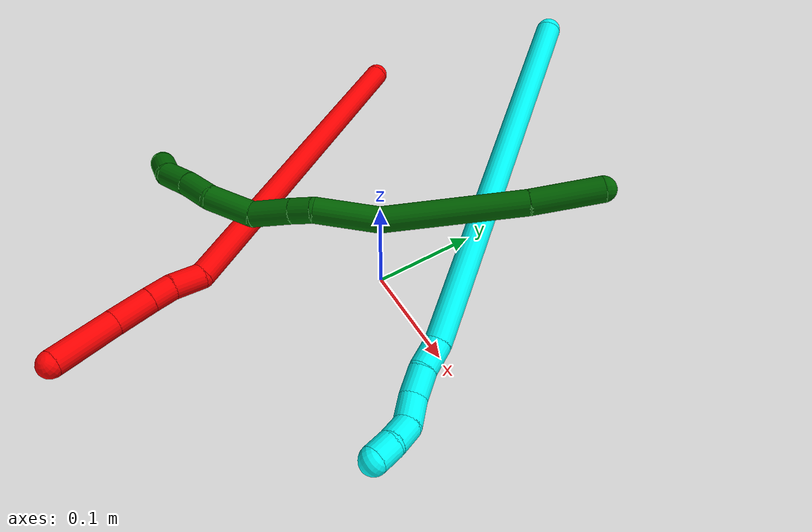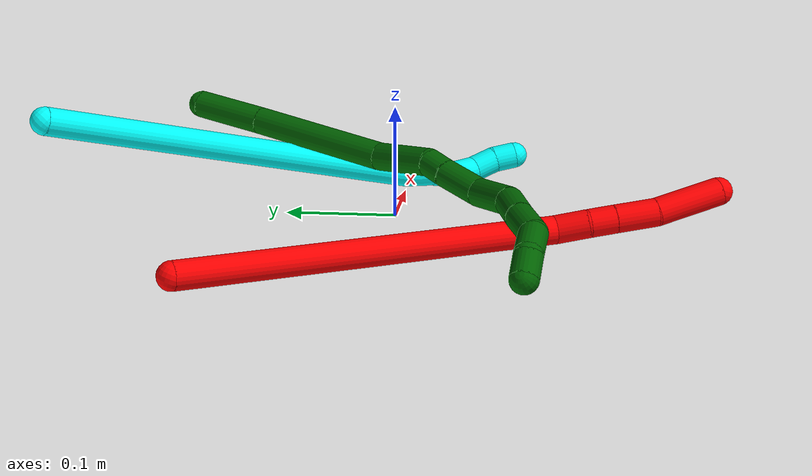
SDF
<sdf version="1.7">
 <world name="default">
  <model name="bin">
   <static>1</static>
   <link name="bottom">
    <collision name="collision-bottom">
     <pose>0 0 -0.01 0 -0 0</pose>
     <geometry><box><size>0.8 0.6 0.02</size></box></geometry>
     <surface>
      <friction><ode><mu>100</mu><mu2>100</mu2></ode></friction>
      <contact><collide_bitmask>65535</collide_bitmask></contact>
     </surface>
    </collision>
   </link>
   <link name="west_wall">
    <collision name="collision-west_wall">
     <pose>-0.41 0 0.1 0 -0 0</pose>
     <geometry><box><size>0.02 0.6 0.2</size></box></geometry>
     <surface>
      <friction><ode><mu>100</mu><mu2>100</mu2></ode></friction>
      <contact><collide_bitmask>65535</collide_bitmask></contact>
     </surface>
    </collision>
   </link>
   <link name="east_wall">
    <collision name="collision-east_wall">
     <pose>0.41 0 0.1 0 -0 0</pose>
     <geometry><box><size>0.02 0.6 0.2</size></box></geometry>
     <surface>
      <friction><ode><mu>100</mu><mu2>100</mu2></ode></friction>
      <contact><collide_bitmask>65535</collide_bitmask></contact>
     </surface>
    </collision>
   </link>
   <link name="south_wall">
    <collision name="collision-south_wall">
     <pose>0 -0.31 0.1 0 -0 0</pose>
     <geometry><box><size>0.8 0.02 0.2</size></box></geometry>
     <surface>
      <friction><ode><mu>100</mu><mu2>100</mu2></ode></friction>
      <contact><collide_bitmask>65535</collide_bitmask></contact>
     </surface>
    </collision>
   </link>
   <link name="north_wall">
    <collision name="collision-north_wall">
     <pose>0 0.31 0.1 0 -0 0</pose>
     <geometry><box><size>0.8 0.02 0.2</size></box></geometry>
     <surface>
      <friction><ode><mu>100</mu><mu2>100</mu2></ode></friction>
      <contact><collide_bitmask>65535</collide_bitmask></contact>
     </surface>
    </collision>
   </link>
  </model>
  <model name="2">
   <static>0</static>
   <link name="2">
    <collision name="collision-cylinder-e_1_1_4">
     <pose>0.079349 -0.143141 -0.059236 1.96317 0.473373 0.692643</pose>
     <geometry><cylinder><radius>0.0125</radius><length>0.348106</length></cylinder></geometry>
     <surface>
      <friction><ode><mu>1.16</mu><mu2>1.16</mu2><slip1>0</slip1><slip2>0</slip2></ode></friction>
      <contact><ode><kp>1e+06</kp><kd>1</kd><max_vel>0</max_vel><min_depth>0.001</min_depth></ode></contact>
     </surface>
    </collision>
    <visual name="visual-cylinder-e_1_1_4">
     <pose>0.079349 -0.143141 -0.059236 1.96317 0.473373 0.692643</pose>
     <geometry><cylinder><radius>0.0125</radius><length>0.348106</length></cylinder></geometry>
     <material><ambient>1 0 0 1</ambient></material>
    </visual>
    <collision name="collision-cylinder-e_2_4_5">
     <pose>0.169554 -0.293169 -0.126534 2.43457 0.797166 1.7025</pose>
     <geometry><cylinder><radius>0.0125</radius><length>0.03035</length></cylinder></geometry>
     <surface>
      <friction><ode><mu>1.16</mu><mu2>1.16</mu2><slip1>0</slip1><slip2>0</slip2></ode></friction>
      <contact><ode><kp>1e+06</kp><kd>1</kd><max_vel>0</max_vel><min_depth>0.001</min_depth></ode></contact>
     </surface>
    </collision>
    <visual name="visual-cylinder-e_2_4_5">
     <pose>0.169554 -0.293169 -0.126534 2.43457 0.797166 1.7025</pose>
     <geometry><cylinder><radius>0.0125</radius><length>0.03035</length></cylinder></geometry>
     <material><ambient>1 0 0 1</ambient></material>
    </visual>
    <collision name="collision-cylinder-e_3_5_6">
     <pose>0.187676 -0.307168 -0.140119 2.2312 0.678892 1.2499</pose>
     <geometry><cylinder><radius>0.0125</radius><length>0.023142</length></cylinder></geometry>
     <surface>
      <friction><ode><mu>1.16</mu><mu2>1.16</mu2><slip1>0</slip1><slip2>0</slip2></ode></friction>
      <contact><ode><kp>1e+06</kp><kd>1</kd><max_vel>0</max_vel><min_depth>0.001</min_depth></ode></contact>
     </surface>
    </collision>
    <visual name="visual-cylinder-e_3_5_6">
     <pose>0.187676 -0.307168 -0.140119 2.2312 0.678892 1.2499</pose>
     <geometry><cylinder><radius>0.0125</radius><length>0.023142</length></cylinder></geometry>
     <material><ambient>1 0 0 1</ambient></material>
    </visual>
    <collision name="collision-cylinder-e_4_6_7">
     <pose>0.206418 -0.32613 -0.154321 2.20284 0.663281 1.19293</pose>
     <geometry><cylinder><radius>0.0125</radius><length>0.037278</length></cylinder></geometry>
     <surface>
      <friction><ode><mu>1.16</mu><mu2>1.16</mu2><slip1>0</slip1><slip2>0</slip2></ode></friction>
      <contact><ode><kp>1e+06</kp><kd>1</kd><max_vel>0</max_vel><min_depth>0.001</min_depth></ode></contact>
     </surface>
    </collision>
    <visual name="visual-cylinder-e_4_6_7">
     <pose>0.206418 -0.32613 -0.154321 2.20284 0.663281 1.19293</pose>
     <geometry><cylinder><radius>0.0125</radius><length>0.037278</length></cylinder></geometry>
     <material><ambient>1 0 0 1</ambient></material>
    </visual>
    <collision name="collision-cylinder-e_5_7_2">
     <pose>0.232594 -0.358515 -0.180211 2.26843 0.50179 1.00456</pose>
     <geometry><cylinder><radius>0.0125</radius><length>0.061124</length></cylinder></geometry>
     <surface>
      <friction><ode><mu>1.16</mu><mu2>1.16</mu2><slip1>0</slip1><slip2>0</slip2></ode></friction>
      <contact><ode><kp>1e+06</kp><kd>1</kd><max_vel>0</max_vel><min_depth>0.001</min_depth></ode></contact>
     </surface>
    </collision>
    <visual name="visual-cylinder-e_5_7_2">
     <pose>0.232594 -0.358515 -0.180211 2.26843 0.50179 1.00456</pose>
     <geometry><cylinder><radius>0.0125</radius><length>0.061124</length></cylinder></geometry>
     <material><ambient>1 0 0 1</ambient></material>
    </visual>
    <collision name="collision-sphere-2">
     <pose>0.247294 -0.379049 -0.197423 0 -0 0</pose>
     <geometry><sphere><radius>0.0125</radius></sphere></geometry>
     <surface>
      <friction><ode><mu>1.16</mu><mu2>1.16</mu2><slip1>0</slip1><slip2>0</slip2></ode></friction>
      <contact><ode><kp>1e+06</kp><kd>1</kd><max_vel>0</max_vel><min_depth>0.001</min_depth></ode></contact>
     </surface>
    </collision>
    <visual name="visual-sphere-2">
     <pose>0.247294 -0.379049 -0.197423 0 -0 0</pose>
     <geometry><sphere><radius>0.0125</radius></sphere></geometry>
     <material><ambient>1 0 0 1</ambient></material>
    </visual>
    <collision name="collision-sphere-7">
     <pose>0.217894 -0.33798 -0.162998 0 -0 0</pose>
     <geometry><sphere><radius>0.0125</radius></sphere></geometry>
     <surface>
      <friction><ode><mu>1.16</mu><mu2>1.16</mu2><slip1>0</slip1><slip2>0</slip2></ode></friction>
      <contact><ode><kp>1e+06</kp><kd>1</kd><max_vel>0</max_vel><min_depth>0.001</min_depth></ode></contact>
     </surface>
    </collision>
    <visual name="visual-sphere-7">
     <pose>0.217894 -0.33798 -0.162998 0 -0 0</pose>
     <geometry><sphere><radius>0.0125</radius></sphere></geometry>
     <material><ambient>1 0 0 1</ambient></material>
    </visual>
    <collision name="collision-sphere-6">
     <pose>0.194942 -0.31428 -0.145644 0 -0 0</pose>
     <geometry><sphere><radius>0.0125</radius></sphere></geometry>
     <surface>
      <friction><ode><mu>1.16</mu><mu2>1.16</mu2><slip1>0</slip1><slip2>0</slip2></ode></friction>
      <contact><ode><kp>1e+06</kp><kd>1</kd><max_vel>0</max_vel><min_depth>0.001</min_depth></ode></contact>
     </surface>
    </collision>
    <visual name="visual-sphere-6">
     <pose>0.194942 -0.31428 -0.145644 0 -0 0</pose>
     <geometry><sphere><radius>0.0125</radius></sphere></geometry>
     <material><ambient>1 0 0 1</ambient></material>
    </visual>
    <collision name="collision-sphere-5">
     <pose>0.18041 -0.300057 -0.134595 0 -0 0</pose>
     <geometry><sphere><radius>0.0125</radius></sphere></geometry>
     <surface>
      <friction><ode><mu>1.16</mu><mu2>1.16</mu2><slip1>0</slip1><slip2>0</slip2></ode></friction>
      <contact><ode><kp>1e+06</kp><kd>1</kd><max_vel>0</max_vel><min_depth>0.001</min_depth></ode></contact>
     </surface>
    </collision>
    <visual name="visual-sphere-5">
     <pose>0.18041 -0.300057 -0.134595 0 -0 0</pose>
     <geometry><sphere><radius>0.0125</radius></sphere></geometry>
     <material><ambient>1 0 0 1</ambient></material>
    </visual>
    <collision name="collision-sphere-1">
     <geometry><sphere><radius>0.0125</radius></sphere></geometry>
     <surface>
      <friction><ode><mu>1.16</mu><mu2>1.16</mu2><slip1>0</slip1><slip2>0</slip2></ode></friction>
      <contact><ode><kp>1e+06</kp><kd>1</kd><max_vel>0</max_vel><min_depth>0.001</min_depth></ode></contact>
     </surface>
    </collision>
    <visual name="visual-sphere-1">
     <geometry><sphere><radius>0.0125</radius></sphere></geometry>
     <material><ambient>1 0 0 1</ambient></material>
    </visual>
    <collision name="collision-sphere-4">
     <pose>0.158699 -0.286281 -0.118472 0 -0 0</pose>
     <geometry><sphere><radius>0.0125</radius></sphere></geometry>
     <surface>
      <friction><ode><mu>1.16</mu><mu2>1.16</mu2><slip1>0</slip1><slip2>0</slip2></ode></friction>
      <contact><ode><kp>1e+06</kp><kd>1</kd><max_vel>0</max_vel><min_depth>0.001</min_depth></ode></contact>
     </surface>
    </collision>
    <visual name="visual-sphere-4">
     <pose>0.158699 -0.286281 -0.118472 0 -0 0</pose>
     <geometry><sphere><radius>0.0125</radius></sphere></geometry>
     <material><ambient>1 0 0 1</ambient></material>
    </visual>
    <inertial>
     <pose>0.118046 -0.199811 -0.088943 0 -0 0</pose>
     <mass>0.5</mass>
     <inertia>
      <ixx>0.004478</ixx>
      <ixy>0</ixy>
      <ixz>0</ixz>
      <iyy>0.001914</iyy>
      <iyz>0</iyz>
      <izz>0.001281</izz>
     </inertia>
    </inertial>
   </link>
   <pose>-0.264957 0.150574 0.011499 2.89554 0.277325 -2.10203</pose>
  </model>
  <model name="3">
   <static>0</static>
   <link name="3">
    <collision name="collision-cylinder-e_1_1_4">
     <pose>0.086215 -0.115543 -0.120668 2.37789 0.47641 1.0877</pose>
     <geometry><cylinder><radius>0.0125</radius><length>0.375999</length></cylinder></geometry>
     <surface>
      <friction><ode><mu>1.16</mu><mu2>1.16</mu2><slip1>0</slip1><slip2>0</slip2></ode></friction>
      <contact><ode><kp>1e+06</kp><kd>1</kd><max_vel>0</max_vel><min_depth>0.001</min_depth></ode></contact>
     </surface>
    </collision>
    <visual name="visual-cylinder-e_1_1_4">
     <pose>0.086215 -0.115543 -0.120668 2.37789 0.47641 1.0877</pose>
     <geometry><cylinder><radius>0.0125</radius><length>0.375999</length></cylinder></geometry>
     <material><ambient>0.003922 1 0.996078 1</ambient></material>
    </visual>
    <collision name="collision-cylinder-e_2_4_5">
     <pose>0.176208 -0.241464 -0.24983 2.25671 0.274583 0.567503</pose>
     <geometry><cylinder><radius>0.0125</radius><length>0.027868</length></cylinder></geometry>
     <surface>
      <friction><ode><mu>1.16</mu><mu2>1.16</mu2><slip1>0</slip1><slip2>0</slip2></ode></friction>
      <contact><ode><kp>1e+06</kp><kd>1</kd><max_vel>0</max_vel><min_depth>0.001</min_depth></ode></contact>
     </surface>
    </collision>
    <visual name="visual-cylinder-e_2_4_5">
     <pose>0.176208 -0.241464 -0.24983 2.25671 0.274583 0.567503</pose>
     <geometry><cylinder><radius>0.0125</radius><length>0.027868</length></cylinder></geometry>
     <material><ambient>0.003922 1 0.996078 1</ambient></material>
    </visual>
    <collision name="collision-cylinder-e_3_5_6">
     <pose>0.185914 -0.260113 -0.266241 2.33431 0.477775 1.03647</pose>
     <geometry><cylinder><radius>0.0125</radius><length>0.025785</length></cylinder></geometry>
     <surface>
      <friction><ode><mu>1.16</mu><mu2>1.16</mu2><slip1>0</slip1><slip2>0</slip2></ode></friction>
      <contact><ode><kp>1e+06</kp><kd>1</kd><max_vel>0</max_vel><min_depth>0.001</min_depth></ode></contact>
     </surface>
    </collision>
    <visual name="visual-cylinder-e_3_5_6">
     <pose>0.185914 -0.260113 -0.266241 2.33431 0.477775 1.03647</pose>
     <geometry><cylinder><radius>0.0125</radius><length>0.025785</length></cylinder></geometry>
     <material><ambient>0.003922 1 0.996078 1</ambient></material>
    </visual>
    <collision name="collision-cylinder-e_4_6_7">
     <pose>0.198004 -0.278644 -0.278945 2.0074 0.498406 0.760313</pose>
     <geometry><cylinder><radius>0.0125</radius><length>0.02578</length></cylinder></geometry>
     <surface>
      <friction><ode><mu>1.16</mu><mu2>1.16</mu2><slip1>0</slip1><slip2>0</slip2></ode></friction>
      <contact><ode><kp>1e+06</kp><kd>1</kd><max_vel>0</max_vel><min_depth>0.001</min_depth></ode></contact>
     </surface>
    </collision>
    <visual name="visual-cylinder-e_4_6_7">
     <pose>0.198004 -0.278644 -0.278945 2.0074 0.498406 0.760313</pose>
     <geometry><cylinder><radius>0.0125</radius><length>0.02578</length></cylinder></geometry>
     <material><ambient>0.003922 1 0.996078 1</ambient></material>
    </visual>
    <collision name="collision-cylinder-e_5_7_8">
     <pose>0.204475 -0.300374 -0.287803 1.91178 0.025393 0.035952</pose>
     <geometry><cylinder><radius>0.0125</radius><length>0.02435</length></cylinder></geometry>
     <surface>
      <friction><ode><mu>1.16</mu><mu2>1.16</mu2><slip1>0</slip1><slip2>0</slip2></ode></friction>
      <contact><ode><kp>1e+06</kp><kd>1</kd><max_vel>0</max_vel><min_depth>0.001</min_depth></ode></contact>
     </surface>
    </collision>
    <visual name="visual-cylinder-e_5_7_8">
     <pose>0.204475 -0.300374 -0.287803 1.91178 0.025393 0.035952</pose>
     <geometry><cylinder><radius>0.0125</radius><length>0.02435</length></cylinder></geometry>
     <material><ambient>0.003922 1 0.996078 1</ambient></material>
    </visual>
    <collision name="collision-cylinder-e_6_8_2">
     <pose>0.204391 -0.320359 -0.297309 2.13901 -0.038834 -0.070847</pose>
     <geometry><cylinder><radius>0.0125</radius><length>0.020218</length></cylinder></geometry>
     <surface>
      <friction><ode><mu>1.16</mu><mu2>1.16</mu2><slip1>0</slip1><slip2>0</slip2></ode></friction>
      <contact><ode><kp>1e+06</kp><kd>1</kd><max_vel>0</max_vel><min_depth>0.001</min_depth></ode></contact>
     </surface>
    </collision>
    <visual name="visual-cylinder-e_6_8_2">
     <pose>0.204391 -0.320359 -0.297309 2.13901 -0.038834 -0.070847</pose>
     <geometry><cylinder><radius>0.0125</radius><length>0.020218</length></cylinder></geometry>
     <material><ambient>0.003922 1 0.996078 1</ambient></material>
    </visual>
    <collision name="collision-sphere-2">
     <pose>0.203999 -0.328873 -0.302745 0 -0 0</pose>
     <geometry><sphere><radius>0.0125</radius></sphere></geometry>
     <surface>
      <friction><ode><mu>1.16</mu><mu2>1.16</mu2><slip1>0</slip1><slip2>0</slip2></ode></friction>
      <contact><ode><kp>1e+06</kp><kd>1</kd><max_vel>0</max_vel><min_depth>0.001</min_depth></ode></contact>
     </surface>
    </collision>
    <visual name="visual-sphere-2">
     <pose>0.203999 -0.328873 -0.302745 0 -0 0</pose>
     <geometry><sphere><radius>0.0125</radius></sphere></geometry>
     <material><ambient>0.003922 1 0.996078 1</ambient></material>
    </visual>
    <collision name="collision-sphere-4">
     <pose>0.17243 -0.231085 -0.241335 0 -0 0</pose>
     <geometry><sphere><radius>0.0125</radius></sphere></geometry>
     <surface>
      <friction><ode><mu>1.16</mu><mu2>1.16</mu2><slip1>0</slip1><slip2>0</slip2></ode></friction>
      <contact><ode><kp>1e+06</kp><kd>1</kd><max_vel>0</max_vel><min_depth>0.001</min_depth></ode></contact>
     </surface>
    </collision>
    <visual name="visual-sphere-4">
     <pose>0.17243 -0.231085 -0.241335 0 -0 0</pose>
     <geometry><sphere><radius>0.0125</radius></sphere></geometry>
     <material><ambient>0.003922 1 0.996078 1</ambient></material>
    </visual>
    <collision name="collision-sphere-1">
     <geometry><sphere><radius>0.0125</radius></sphere></geometry>
     <surface>
      <friction><ode><mu>1.16</mu><mu2>1.16</mu2><slip1>0</slip1><slip2>0</slip2></ode></friction>
      <contact><ode><kp>1e+06</kp><kd>1</kd><max_vel>0</max_vel><min_depth>0.001</min_depth></ode></contact>
     </surface>
    </collision>
    <visual name="visual-sphere-1">
     <geometry><sphere><radius>0.0125</radius></sphere></geometry>
     <material><ambient>0.003922 1 0.996078 1</ambient></material>
    </visual>
    <collision name="collision-sphere-8">
     <pose>0.204784 -0.311844 -0.291873 0 -0 0</pose>
     <geometry><sphere><radius>0.0125</radius></sphere></geometry>
     <surface>
      <friction><ode><mu>1.16</mu><mu2>1.16</mu2><slip1>0</slip1><slip2>0</slip2></ode></friction>
      <contact><ode><kp>1e+06</kp><kd>1</kd><max_vel>0</max_vel><min_depth>0.001</min_depth></ode></contact>
     </surface>
    </collision>
    <visual name="visual-sphere-8">
     <pose>0.204784 -0.311844 -0.291873 0 -0 0</pose>
     <geometry><sphere><radius>0.0125</radius></sphere></geometry>
     <material><ambient>0.003922 1 0.996078 1</ambient></material>
    </visual>
    <collision name="collision-sphere-5">
     <pose>0.179986 -0.251842 -0.258325 0 -0 0</pose>
     <geometry><sphere><radius>0.0125</radius></sphere></geometry>
     <surface>
      <friction><ode><mu>1.16</mu><mu2>1.16</mu2><slip1>0</slip1><slip2>0</slip2></ode></friction>
      <contact><ode><kp>1e+06</kp><kd>1</kd><max_vel>0</max_vel><min_depth>0.001</min_depth></ode></contact>
     </surface>
    </collision>
    <visual name="visual-sphere-5">
     <pose>0.179986 -0.251842 -0.258325 0 -0 0</pose>
     <geometry><sphere><radius>0.0125</radius></sphere></geometry>
     <material><ambient>0.003922 1 0.996078 1</ambient></material>
    </visual>
    <collision name="collision-sphere-6">
     <pose>0.191842 -0.268384 -0.274158 0 -0 0</pose>
     <geometry><sphere><radius>0.0125</radius></sphere></geometry>
     <surface>
      <friction><ode><mu>1.16</mu><mu2>1.16</mu2><slip1>0</slip1><slip2>0</slip2></ode></friction>
      <contact><ode><kp>1e+06</kp><kd>1</kd><max_vel>0</max_vel><min_depth>0.001</min_depth></ode></contact>
     </surface>
    </collision>
    <visual name="visual-sphere-6">
     <pose>0.191842 -0.268384 -0.274158 0 -0 0</pose>
     <geometry><sphere><radius>0.0125</radius></sphere></geometry>
     <material><ambient>0.003922 1 0.996078 1</ambient></material>
    </visual>
    <collision name="collision-sphere-7">
     <pose>0.204166 -0.288903 -0.283733 0 -0 0</pose>
     <geometry><sphere><radius>0.0125</radius></sphere></geometry>
     <surface>
      <friction><ode><mu>1.16</mu><mu2>1.16</mu2><slip1>0</slip1><slip2>0</slip2></ode></friction>
      <contact><ode><kp>1e+06</kp><kd>1</kd><max_vel>0</max_vel><min_depth>0.001</min_depth></ode></contact>
     </surface>
    </collision>
    <visual name="visual-sphere-7">
     <pose>0.204166 -0.288903 -0.283733 0 -0 0</pose>
     <geometry><sphere><radius>0.0125</radius></sphere></geometry>
     <material><ambient>0.003922 1 0.996078 1</ambient></material>
    </visual>
    <inertial>
     <pose>0.112674 -0.155709 -0.158817 0 -0 0</pose>
     <mass>0.5</mass>
     <inertia>
      <ixx>0.005362</ixx>
      <ixy>0</ixy>
      <ixz>0</ixz>
      <iyy>0.003231</iyy>
      <iyz>0</iyz>
      <izz>0.000676</izz>
     </inertia>
    </inertial>
   </link>
   <pose>-0.127506 0.288526 0.106566 -0.752129 0.428802 0.238872</pose>
  </model>
  <model name="6">
   <static>0</static>
   <link name="6">
    <collision name="collision-cylinder-e_1_1_4">
     <pose>-0.024775 -0.023483 -0.000177 1.57834 -0.812158 -0.817644</pose>
     <geometry><cylinder><radius>0.0125</radius><length>0.068273</length></cylinder></geometry>
     <surface>
      <friction><ode><mu>1.16</mu><mu2>1.16</mu2><slip1>0</slip1><slip2>0</slip2></ode></friction>
      <contact><ode><kp>1e+06</kp><kd>1</kd><max_vel>0</max_vel><min_depth>0.001</min_depth></ode></contact>
     </surface>
    </collision>
    <visual name="visual-cylinder-e_1_1_4">
     <pose>-0.024775 -0.023483 -0.000177 1.57834 -0.812158 -0.817644</pose>
     <geometry><cylinder><radius>0.0125</radius><length>0.068273</length></cylinder></geometry>
     <material><ambient>0 0.392157 0.003922 1</ambient></material>
    </visual>
    <collision name="collision-cylinder-e_2_4_5">
     <pose>-0.09769 -0.095615 -0.005361 1.67336 -0.777497 -0.852209</pose>
     <geometry><cylinder><radius>0.0125</radius><length>0.137247</length></cylinder></geometry>
     <surface>
      <friction><ode><mu>1.16</mu><mu2>1.16</mu2><slip1>0</slip1><slip2>0</slip2></ode></friction>
      <contact><ode><kp>1e+06</kp><kd>1</kd><max_vel>0</max_vel><min_depth>0.001</min_depth></ode></contact>
     </surface>
    </collision>
    <visual name="visual-cylinder-e_2_4_5">
     <pose>-0.09769 -0.095615 -0.005361 1.67336 -0.777497 -0.852209</pose>
     <geometry><cylinder><radius>0.0125</radius><length>0.137247</length></cylinder></geometry>
     <material><ambient>0 0.392157 0.003922 1</ambient></material>
    </visual>
    <collision name="collision-cylinder-e_3_5_6">
     <pose>-0.167548 -0.163615 -0.020345 2.04679 -0.78419 -1.19216</pose>
     <geometry><cylinder><radius>0.0125</radius><length>0.061505</length></cylinder></geometry>
     <surface>
      <friction><ode><mu>1.16</mu><mu2>1.16</mu2><slip1>0</slip1><slip2>0</slip2></ode></friction>
      <contact><ode><kp>1e+06</kp><kd>1</kd><max_vel>0</max_vel><min_depth>0.001</min_depth></ode></contact>
     </surface>
    </collision>
    <visual name="visual-cylinder-e_3_5_6">
     <pose>-0.167548 -0.163615 -0.020345 2.04679 -0.78419 -1.19216</pose>
     <geometry><cylinder><radius>0.0125</radius><length>0.061505</length></cylinder></geometry>
     <material><ambient>0 0.392157 0.003922 1</ambient></material>
    </visual>
    <collision name="collision-cylinder-e_4_6_7">
     <pose>-0.194728 -0.192615 -0.032371 1.78014 -0.50564 -0.617597</pose>
     <geometry><cylinder><radius>0.0125</radius><length>0.02255</length></cylinder></geometry>
     <surface>
      <friction><ode><mu>1.16</mu><mu2>1.16</mu2><slip1>0</slip1><slip2>0</slip2></ode></friction>
      <contact><ode><kp>1e+06</kp><kd>1</kd><max_vel>0</max_vel><min_depth>0.001</min_depth></ode></contact>
     </surface>
    </collision>
    <visual name="visual-cylinder-e_4_6_7">
     <pose>-0.194728 -0.192615 -0.032371 1.78014 -0.50564 -0.617597</pose>
     <geometry><cylinder><radius>0.0125</radius><length>0.02255</length></cylinder></geometry>
     <material><ambient>0 0.392157 0.003922 1</ambient></material>
    </visual>
    <collision name="collision-cylinder-e_5_7_8">
     <pose>-0.211029 -0.219229 -0.037209 1.7337 -0.562519 -0.65598</pose>
     <geometry><cylinder><radius>0.0125</radius><length>0.040649</length></cylinder></geometry>
     <surface>
      <friction><ode><mu>1.16</mu><mu2>1.16</mu2><slip1>0</slip1><slip2>0</slip2></ode></friction>
      <contact><ode><kp>1e+06</kp><kd>1</kd><max_vel>0</max_vel><min_depth>0.001</min_depth></ode></contact>
     </surface>
    </collision>
    <visual name="visual-cylinder-e_5_7_8">
     <pose>-0.211029 -0.219229 -0.037209 1.7337 -0.562519 -0.65598</pose>
     <geometry><cylinder><radius>0.0125</radius><length>0.040649</length></cylinder></geometry>
     <material><ambient>0 0.392157 0.003922 1</ambient></material>
    </visual>
    <collision name="collision-cylinder-e_6_8_9">
     <pose>-0.234229 -0.252467 -0.05259 2.22938 -0.540957 -1.02882</pose>
     <geometry><cylinder><radius>0.0125</radius><length>0.048007</length></cylinder></geometry>
     <surface>
      <friction><ode><mu>1.16</mu><mu2>1.16</mu2><slip1>0</slip1><slip2>0</slip2></ode></friction>
      <contact><ode><kp>1e+06</kp><kd>1</kd><max_vel>0</max_vel><min_depth>0.001</min_depth></ode></contact>
     </surface>
    </collision>
    <visual name="visual-cylinder-e_6_8_9">
     <pose>-0.234229 -0.252467 -0.05259 2.22938 -0.540957 -1.02882</pose>
     <geometry><cylinder><radius>0.0125</radius><length>0.048007</length></cylinder></geometry>
     <material><ambient>0 0.392157 0.003922 1</ambient></material>
    </visual>
    <collision name="collision-cylinder-e_7_9_10">
     <pose>-0.249744 -0.282421 -0.075637 2.22325 -0.181164 -0.363375</pose>
     <geometry><cylinder><radius>0.0125</radius><length>0.03501</length></cylinder></geometry>
     <surface>
      <friction><ode><mu>1.16</mu><mu2>1.16</mu2><slip1>0</slip1><slip2>0</slip2></ode></friction>
      <contact><ode><kp>1e+06</kp><kd>1</kd><max_vel>0</max_vel><min_depth>0.001</min_depth></ode></contact>
     </surface>
    </collision>
    <visual name="visual-cylinder-e_7_9_10">
     <pose>-0.249744 -0.282421 -0.075637 2.22325 -0.181164 -0.363375</pose>
     <geometry><cylinder><radius>0.0125</radius><length>0.03501</length></cylinder></geometry>
     <material><ambient>0 0.392157 0.003922 1</ambient></material>
    </visual>
    <collision name="collision-cylinder-e_8_10_11">
     <pose>-0.256689 -0.309885 -0.094901 2.13955 -0.227786 -0.411834</pose>
     <geometry><cylinder><radius>0.0125</radius><length>0.033583</length></cylinder></geometry>
     <surface>
      <friction><ode><mu>1.16</mu><mu2>1.16</mu2><slip1>0</slip1><slip2>0</slip2></ode></friction>
      <contact><ode><kp>1e+06</kp><kd>1</kd><max_vel>0</max_vel><min_depth>0.001</min_depth></ode></contact>
     </surface>
    </collision>
    <visual name="visual-cylinder-e_8_10_11">
     <pose>-0.256689 -0.309885 -0.094901 2.13955 -0.227786 -0.411834</pose>
     <geometry><cylinder><radius>0.0125</radius><length>0.033583</length></cylinder></geometry>
     <material><ambient>0 0.392157 0.003922 1</ambient></material>
    </visual>
    <collision name="collision-cylinder-e_9_11_12">
     <pose>-0.256737 -0.335314 -0.112737 2.23015 0.248874 0.49974</pose>
     <geometry><cylinder><radius>0.0125</radius><length>0.030404</length></cylinder></geometry>
     <surface>
      <friction><ode><mu>1.16</mu><mu2>1.16</mu2><slip1>0</slip1><slip2>0</slip2></ode></friction>
      <contact><ode><kp>1e+06</kp><kd>1</kd><max_vel>0</max_vel><min_depth>0.001</min_depth></ode></contact>
     </surface>
    </collision>
    <visual name="visual-cylinder-e_9_11_12">
     <pose>-0.256737 -0.335314 -0.112737 2.23015 0.248874 0.49974</pose>
     <geometry><cylinder><radius>0.0125</radius><length>0.030404</length></cylinder></geometry>
     <material><ambient>0 0.392157 0.003922 1</ambient></material>
    </visual>
    <collision name="collision-cylinder-e_10_12_2">
     <pose>-0.248013 -0.356911 -0.124173 1.80837 0.452596 0.569396</pose>
     <geometry><cylinder><radius>0.0125</radius><length>0.022772</length></cylinder></geometry>
     <surface>
      <friction><ode><mu>1.16</mu><mu2>1.16</mu2><slip1>0</slip1><slip2>0</slip2></ode></friction>
      <contact><ode><kp>1e+06</kp><kd>1</kd><max_vel>0</max_vel><min_depth>0.001</min_depth></ode></contact>
     </surface>
    </collision>
    <visual name="visual-cylinder-e_10_12_2">
     <pose>-0.248013 -0.356911 -0.124173 1.80837 0.452596 0.569396</pose>
     <geometry><cylinder><radius>0.0125</radius><length>0.022772</length></cylinder></geometry>
     <material><ambient>0 0.392157 0.003922 1</ambient></material>
    </visual>
    <collision name="collision-sphere-2">
     <pose>-0.243034 -0.366864 -0.126583 0 -0 0</pose>
     <geometry><sphere><radius>0.0125</radius></sphere></geometry>
     <surface>
      <friction><ode><mu>1.16</mu><mu2>1.16</mu2><slip1>0</slip1><slip2>0</slip2></ode></friction>
      <contact><ode><kp>1e+06</kp><kd>1</kd><max_vel>0</max_vel><min_depth>0.001</min_depth></ode></contact>
     </surface>
    </collision>
    <visual name="visual-sphere-2">
     <pose>-0.243034 -0.366864 -0.126583 0 -0 0</pose>
     <geometry><sphere><radius>0.0125</radius></sphere></geometry>
     <material><ambient>0 0.392157 0.003922 1</ambient></material>
    </visual>
    <collision name="collision-sphere-12">
     <pose>-0.252992 -0.346959 -0.121763 0 -0 0</pose>
     <geometry><sphere><radius>0.0125</radius></sphere></geometry>
     <surface>
      <friction><ode><mu>1.16</mu><mu2>1.16</mu2><slip1>0</slip1><slip2>0</slip2></ode></friction>
      <contact><ode><kp>1e+06</kp><kd>1</kd><max_vel>0</max_vel><min_depth>0.001</min_depth></ode></contact>
     </surface>
    </collision>
    <visual name="visual-sphere-12">
     <pose>-0.252992 -0.346959 -0.121763 0 -0 0</pose>
     <geometry><sphere><radius>0.0125</radius></sphere></geometry>
     <material><ambient>0 0.392157 0.003922 1</ambient></material>
    </visual>
    <collision name="collision-sphere-11">
     <pose>-0.260481 -0.323668 -0.103711 0 -0 0</pose>
     <geometry><sphere><radius>0.0125</radius></sphere></geometry>
     <surface>
      <friction><ode><mu>1.16</mu><mu2>1.16</mu2><slip1>0</slip1><slip2>0</slip2></ode></friction>
      <contact><ode><kp>1e+06</kp><kd>1</kd><max_vel>0</max_vel><min_depth>0.001</min_depth></ode></contact>
     </surface>
    </collision>
    <visual name="visual-sphere-11">
     <pose>-0.260481 -0.323668 -0.103711 0 -0 0</pose>
     <geometry><sphere><radius>0.0125</radius></sphere></geometry>
     <material><ambient>0 0.392157 0.003922 1</ambient></material>
    </visual>
    <collision name="collision-sphere-10">
     <pose>-0.252897 -0.296103 -0.086091 0 -0 0</pose>
     <geometry><sphere><radius>0.0125</radius></sphere></geometry>
     <surface>
      <friction><ode><mu>1.16</mu><mu2>1.16</mu2><slip1>0</slip1><slip2>0</slip2></ode></friction>
      <contact><ode><kp>1e+06</kp><kd>1</kd><max_vel>0</max_vel><min_depth>0.001</min_depth></ode></contact>
     </surface>
    </collision>
    <visual name="visual-sphere-10">
     <pose>-0.252897 -0.296103 -0.086091 0 -0 0</pose>
     <geometry><sphere><radius>0.0125</radius></sphere></geometry>
     <material><ambient>0 0.392157 0.003922 1</ambient></material>
    </visual>
    <collision name="collision-sphere-9">
     <pose>-0.24659 -0.26874 -0.065183 0 -0 0</pose>
     <geometry><sphere><radius>0.0125</radius></sphere></geometry>
     <surface>
      <friction><ode><mu>1.16</mu><mu2>1.16</mu2><slip1>0</slip1><slip2>0</slip2></ode></friction>
      <contact><ode><kp>1e+06</kp><kd>1</kd><max_vel>0</max_vel><min_depth>0.001</min_depth></ode></contact>
     </surface>
    </collision>
    <visual name="visual-sphere-9">
     <pose>-0.24659 -0.26874 -0.065183 0 -0 0</pose>
     <geometry><sphere><radius>0.0125</radius></sphere></geometry>
     <material><ambient>0 0.392157 0.003922 1</ambient></material>
    </visual>
    <collision name="collision-sphere-4">
     <pose>-0.04955 -0.046966 -0.000354 0 -0 0</pose>
     <geometry><sphere><radius>0.0125</radius></sphere></geometry>
     <surface>
      <friction><ode><mu>1.16</mu><mu2>1.16</mu2><slip1>0</slip1><slip2>0</slip2></ode></friction>
      <contact><ode><kp>1e+06</kp><kd>1</kd><max_vel>0</max_vel><min_depth>0.001</min_depth></ode></contact>
     </surface>
    </collision>
    <visual name="visual-sphere-4">
     <pose>-0.04955 -0.046966 -0.000354 0 -0 0</pose>
     <geometry><sphere><radius>0.0125</radius></sphere></geometry>
     <material><ambient>0 0.392157 0.003922 1</ambient></material>
    </visual>
    <collision name="collision-sphere-1">
     <geometry><sphere><radius>0.0125</radius></sphere></geometry>
     <surface>
      <friction><ode><mu>1.16</mu><mu2>1.16</mu2><slip1>0</slip1><slip2>0</slip2></ode></friction>
      <contact><ode><kp>1e+06</kp><kd>1</kd><max_vel>0</max_vel><min_depth>0.001</min_depth></ode></contact>
     </surface>
    </collision>
    <visual name="visual-sphere-1">
     <geometry><sphere><radius>0.0125</radius></sphere></geometry>
     <material><ambient>0 0.392157 0.003922 1</ambient></material>
    </visual>
    <collision name="collision-sphere-8">
     <pose>-0.221868 -0.236194 -0.039998 0 -0 0</pose>
     <geometry><sphere><radius>0.0125</radius></sphere></geometry>
     <surface>
      <friction><ode><mu>1.16</mu><mu2>1.16</mu2><slip1>0</slip1><slip2>0</slip2></ode></friction>
      <contact><ode><kp>1e+06</kp><kd>1</kd><max_vel>0</max_vel><min_depth>0.001</min_depth></ode></contact>
     </surface>
    </collision>
    <visual name="visual-sphere-8">
     <pose>-0.221868 -0.236194 -0.039998 0 -0 0</pose>
     <geometry><sphere><radius>0.0125</radius></sphere></geometry>
     <material><ambient>0 0.392157 0.003922 1</ambient></material>
    </visual>
    <collision name="collision-sphere-5">
     <pose>-0.145829 -0.144263 -0.010369 0 -0 0</pose>
     <geometry><sphere><radius>0.0125</radius></sphere></geometry>
     <surface>
      <friction><ode><mu>1.16</mu><mu2>1.16</mu2><slip1>0</slip1><slip2>0</slip2></ode></friction>
      <contact><ode><kp>1e+06</kp><kd>1</kd><max_vel>0</max_vel><min_depth>0.001</min_depth></ode></contact>
     </surface>
    </collision>
    <visual name="visual-sphere-5">
     <pose>-0.145829 -0.144263 -0.010369 0 -0 0</pose>
     <geometry><sphere><radius>0.0125</radius></sphere></geometry>
     <material><ambient>0 0.392157 0.003922 1</ambient></material>
    </visual>
    <collision name="collision-sphere-6">
     <pose>-0.189267 -0.182966 -0.030321 0 -0 0</pose>
     <geometry><sphere><radius>0.0125</radius></sphere></geometry>
     <surface>
      <friction><ode><mu>1.16</mu><mu2>1.16</mu2><slip1>0</slip1><slip2>0</slip2></ode></friction>
      <contact><ode><kp>1e+06</kp><kd>1</kd><max_vel>0</max_vel><min_depth>0.001</min_depth></ode></contact>
     </surface>
    </collision>
    <visual name="visual-sphere-6">
     <pose>-0.189267 -0.182966 -0.030321 0 -0 0</pose>
     <geometry><sphere><radius>0.0125</radius></sphere></geometry>
     <material><ambient>0 0.392157 0.003922 1</ambient></material>
    </visual>
    <collision name="collision-sphere-7">
     <pose>-0.200189 -0.202264 -0.034421 0 -0 0</pose>
     <geometry><sphere><radius>0.0125</radius></sphere></geometry>
     <surface>
      <friction><ode><mu>1.16</mu><mu2>1.16</mu2><slip1>0</slip1><slip2>0</slip2></ode></friction>
      <contact><ode><kp>1e+06</kp><kd>1</kd><max_vel>0</max_vel><min_depth>0.001</min_depth></ode></contact>
     </surface>
    </collision>
    <visual name="visual-sphere-7">
     <pose>-0.200189 -0.202264 -0.034421 0 -0 0</pose>
     <geometry><sphere><radius>0.0125</radius></sphere></geometry>
     <material><ambient>0 0.392157 0.003922 1</ambient></material>
    </visual>
    <inertial>
     <pose>-0.160871 -0.177563 -0.037714 0 -0 0</pose>
     <mass>0.5</mass>
     <inertia>
      <ixx>-3.3e-05</ixx>
      <ixy>0</ixy>
      <ixz>0</ixz>
      <iyy>-6.8e-05</iyy>
      <iyz>0</iyz>
      <izz>0.00041</izz>
     </inertia>
    </inertial>
   </link>
   <pose>0.072647 0.192067 0.086427 2.22868 0.486946 1.58486</pose>
  </model>
 </world>
</sdf>
